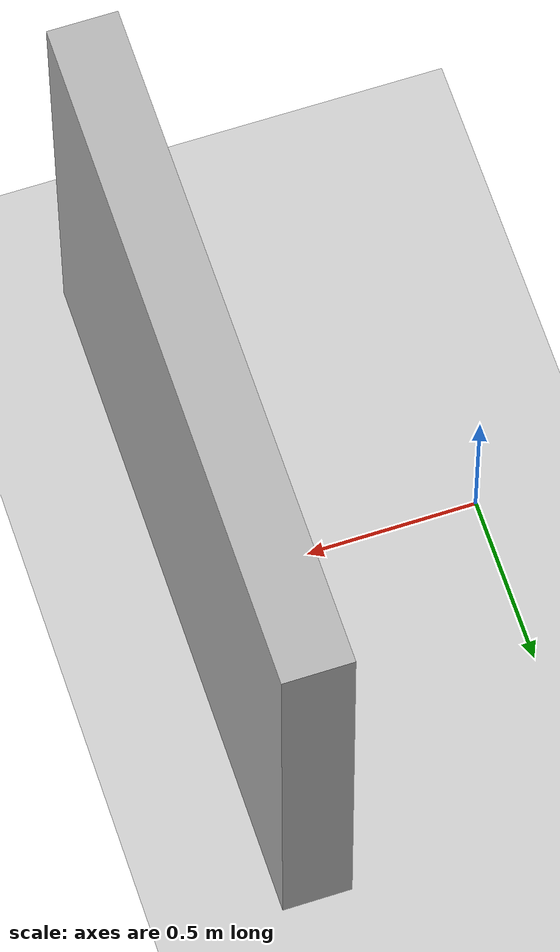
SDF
<?xml version="1.0"?>
<sdf version="1.10">

  <world name="wall_paint_world">

    <!-- ================= Physics ================= -->
    <physics name="default" type="ode">
      <max_step_size>0.001</max_step_size>
      <real_time_factor>1.0</real_time_factor>
      <real_time_update_rate>1000</real_time_update_rate>
    </physics>

    <!-- ================= Core Systems ================= -->
    <plugin filename="gz-sim-physics-system"
            name="gz::sim::systems::Physics"/>

    <plugin filename="gz-sim-scene-broadcaster-system"
            name="gz::sim::systems::SceneBroadcaster"/>

    <plugin filename="gz-sim-user-commands-system"
            name="gz::sim::systems::UserCommands"/>

    <plugin filename="gz-sim-sensors-system"
            name="gz::sim::systems::Sensors"/>

    <plugin filename="gz-sim-contact-system"
            name="gz::sim::systems::Contact"/>

    <gravity>0 0 -9.8</gravity>

    <!-- ================= Scene ================= -->
    <scene>
      <ambient>0.4 0.4 0.4 1</ambient>
      <background>0.7 0.7 0.7 1</background>
      <shadows>true</shadows>
    </scene>

    <!-- ================= Ground ================= -->
    <model name="ground_plane">
      <static>true</static>
      <link name="link">
        <collision name="collision">
          <geometry>
            <plane>
              <normal>0 0 1</normal>
              <size>100 100</size>
            </plane>
          </geometry>
        </collision>

        <visual name="visual">
          <geometry>
            <plane>
              <normal>0 0 1</normal>
              <size>100 100</size>
            </plane>
          </geometry>
          <material>
            <ambient>0.8 0.8 0.8 1</ambient>
            <diffuse>0.8 0.8 0.8 1</diffuse>
          </material>
        </visual>
      </link>
    </model>

    <!-- ================= Wall ================= -->
    <!-- This is your painting surface -->
    <model name="wall">
      <static>true</static>
      <pose>0.8 0 0.75 0 0 0</pose>

      <link name="wall_link">
        <collision name="collision">
          <geometry>
            <box>
              <size>0.2 2 1.5</size>
            </box>
          </geometry>
        </collision>

        <visual name="visual">
          <geometry>
            <box>
              <size>0.2 2 1.5</size>
            </box>
          </geometry>
          <material>
            <ambient>0.3 0.3 0.3 1</ambient>
            <diffuse>0.7 0.7 0.7 1</diffuse>
          </material>
        </visual>
      </link>
    </model>

    <!-- ================= Light ================= -->
    <light name="sun" type="directional">
      <pose>0 0 10 0 0 0</pose>
      <cast_shadows>true</cast_shadows>
      <direction>-0.5 0.1 -0.9</direction>
      <diffuse>0.8 0.8 0.8 1</diffuse>
      <specular>0.2 0.2 0.2 1</specular>
    </light>

  </world>
</sdf>
